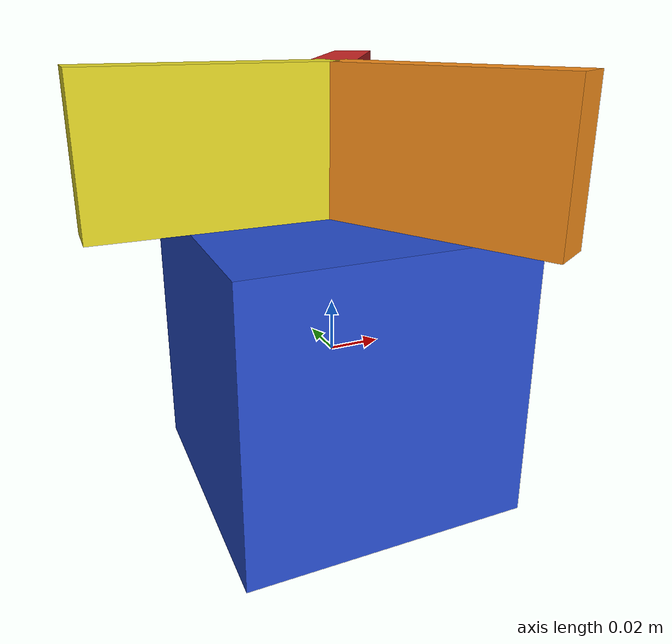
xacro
<robot name="gripper">
  <link name="gripper_base">
    <inertial>
      <origin xyz="0.055 0.055 0.055"/>
      <mass value="5.0" />
      <inertia  ixx="1.0" ixy="0.0"  ixz="0.0"  iyy="100.0"  iyz="0.0"  izz="1.0" />
    </inertial>
    <visual>
      <origin xyz="0 0 0"/>
      <geometry>
        <box size="0.11 0.11 0.11" />
      </geometry>
    </visual>
    <collision>
      <origin xyz="0 0 0"/>
      <geometry>
        <box size="0.11 0.11 0.11" />
      </geometry>
    </collision>
  </link>
  <link name="gripper_finger_1">
    <inertial>
      <origin xyz="0.045125 0.00825 0.0275"/>
      <mass value="1.0" />
      <inertia  ixx="1.0" ixy="0.0"  ixz="0.0"  iyy="100.0"  iyz="0.0"  izz="1.0" />
    </inertial>
    <visual>
      <origin xyz="0.015 0 0"/>
      <geometry>
        <box size="0.09025 0.0165 0.055" />
      </geometry>
    </visual>
    <collision>
      <origin xyz="0.015 0 0"/>
      <geometry>
        <box size="0.09025 0.0165 0.055" />
      </geometry>
    </collision>
  </link>
  <link name="gripper_finger_2">
    <inertial>
      <origin xyz="0.045125 0.00825 0.0275"/>
      <mass value="1.0" />
      <inertia  ixx="1.0" ixy="0.0"  ixz="0.0"  iyy="100.0"  iyz="0.0"  izz="1.0" />
    </inertial>
    <visual>
      <origin xyz="0.015 0 0"/>
      <geometry>
        <box size="0.09025 0.0165 0.055" />
      </geometry>
    </visual>
    <collision>
      <origin xyz="-0.015 0 0"/>
      <geometry>
        <box size="0.09025 0.0165 0.055" />
      </geometry>
    </collision>
  </link>
  <link name="gripper_finger_3">
    <inertial>
      <origin xyz="0.045125 0.00825 0.0275"/>
      <mass value="1.0" />
      <inertia  ixx="1.0" ixy="0.0"  ixz="0.0"  iyy="100.0"  iyz="0.0"  izz="1.0" />
    </inertial>
    <visual>
      <origin xyz="0.015 0 0"/>
      <geometry>
        <box size="0.09025 0.0165 0.055" />
      </geometry>
    </visual>
    <collision>
      <origin xyz="0.015 0 0"/>
      <geometry>
        <box size="0.09025 0.0165 0.055" />
      </geometry>
    </collision>
  </link>
  <joint name="hand_joint_1" type="revolute">
    <parent link="gripper_base"/>
    <child link="gripper_finger_1"/>
    <axis xyz="0 0 1"/>
    <origin xyz="0.015 0.026 0.0835" rpy="0 0 1.047"/>
    <limit effort="30" velocity="1.0" lower="0" upper="3.14" />
  </joint>

  <joint name="hand_joint_2" type="revolute">
    <parent link="gripper_base"/>
    <child link="gripper_finger_2"/>
    <axis xyz="0 0 1"/>
    <origin xyz="-0.03 0 0.0835" rpy="0 0 3.14"/>
    <limit effort="30" velocity="1.0" lower="0" upper="3.14" />
  </joint>

  <joint name="hand_joint_3" type="revolute">
    <parent link="gripper_base"/>
    <child link="gripper_finger_3"/>
    <axis xyz="0 0 1"/>
    <origin xyz="0.015 -0.026 0.0835" rpy="0 0 -1.047"/>
    <limit effort="30" velocity="1.0" lower="0" upper="3.14" />
  </joint>

  <gazebo reference="gripper_base">
    <material>Gazebo/Blue</material>
  </gazebo>
  <gazebo reference="gripper_finger_1">
    <material>Gazebo/Red</material>
  </gazebo>
  <gazebo reference="gripper_finger_2">
    <material>Gazebo/Yellow</material>
  </gazebo>
  <gazebo reference="gripper_finger_3">
    <material>Gazebo/Orange</material>
  </gazebo>

  <gazebo>
    <plugin name="gazebo_ros_control" filename="libgazebo_ros_control.so">
        <robotNamespace>/gripper_controller</robotNamespace>
    </plugin>
  </gazebo>

    <transmission name="hand_joint_1_trans">
      <type>transmission_interface/SimpleTransmission</type>
      <joint name="hand_joint_1">
        <hardwareInterface>hardware_interface/EffortJointInterface</hardwareInterface>
      </joint>
      <actuator name="foo_motor_1">
        <mechanicalReduction>1</mechanicalReduction>
        <hardwareInterface>hardware_interface/EffortJointInterface</hardwareInterface>
      </actuator>
    </transmission>
    <transmission name="hand_joint_2_trans">
      <type>transmission_interface/SimpleTransmission</type>
      <joint name="hand_joint_2">
        <hardwareInterface>hardware_interface/EffortJointInterface</hardwareInterface>
      </joint>
      <actuator name="foo_motor_2">
        <mechanicalReduction>1</mechanicalReduction>
        <hardwareInterface>hardware_interface/EffortJointInterface</hardwareInterface>
      </actuator>
    </transmission>
    <transmission name="hand_joint_3_trans">
      <type>transmission_interface/SimpleTransmission</type>
      <joint name="hand_joint_3">
        <hardwareInterface>hardware_interface/EffortJointInterface</hardwareInterface>
      </joint>
      <actuator name="foo_motor_3">
        <mechanicalReduction>1</mechanicalReduction>
        <hardwareInterface>hardware_interface/EffortJointInterface</hardwareInterface>
      </actuator>
    </transmission>

</robot>
